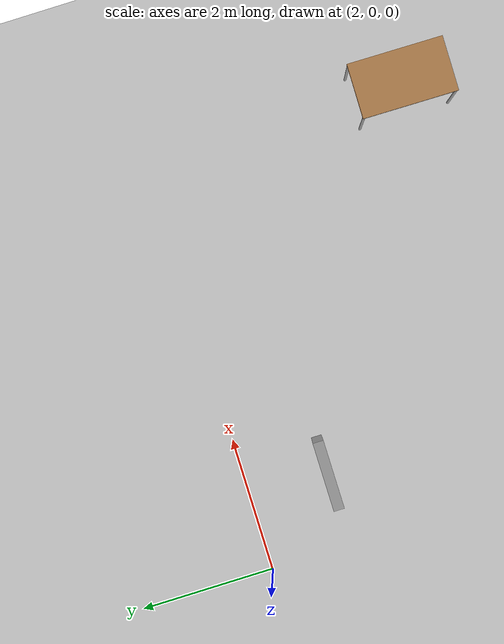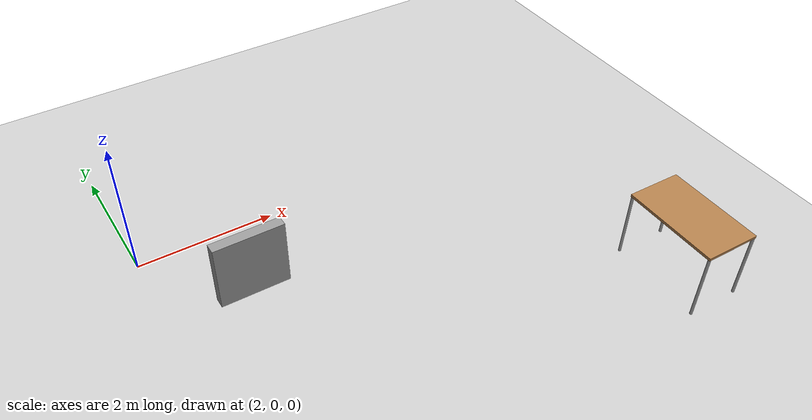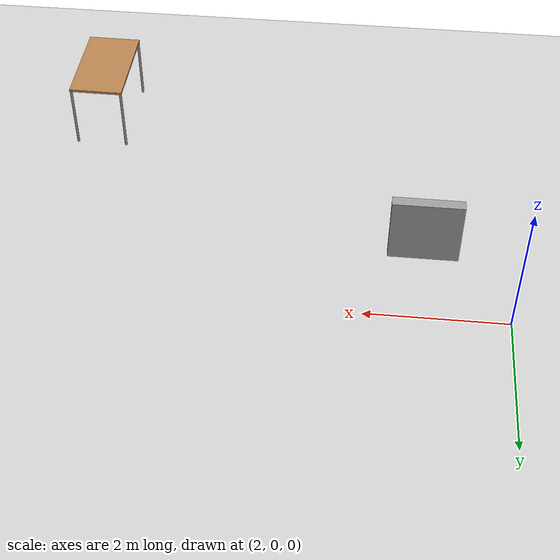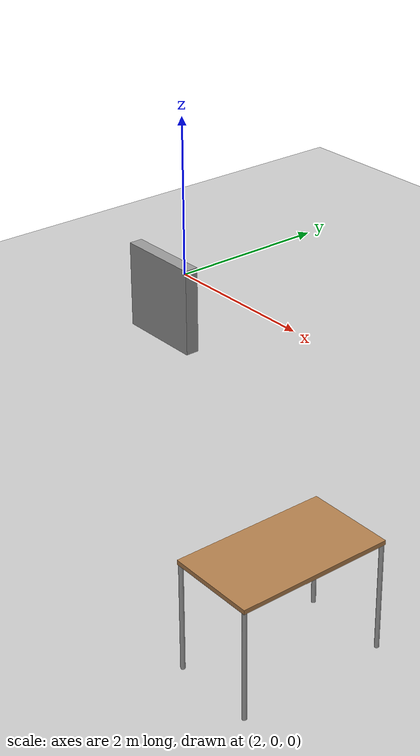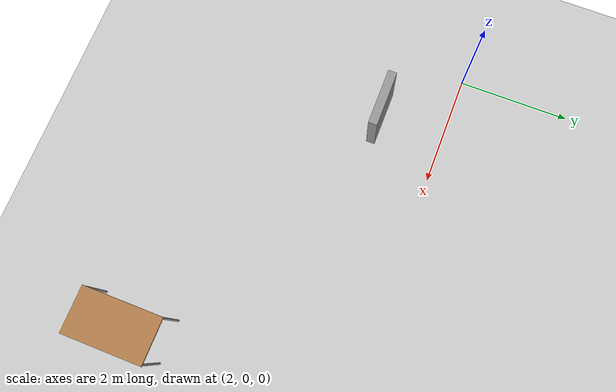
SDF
<sdf version="1.7">
 <world name="default">
  <scene><ambient>0.4 0.4 0.4 1</ambient><background>0.7 0.7 0.7 1</background><shadows>1</shadows></scene>
  <light name="sun" type="directional">
   <pose>0 0 10 0 -0 0</pose>
   <diffuse>0.8 0.8 0.8 1</diffuse>
   <specular>0.2 0.2 0.2 1</specular>
   <attenuation>
    <range>1000</range>
    <constant>0.9</constant>
    <linear>0.01</linear>
    <quadratic>0.001</quadratic>
   </attenuation>
   <direction>-0.5 0.1 -0.9</direction>
   <spot><inner_angle>0</inner_angle><outer_angle>0</outer_angle><falloff>0</falloff></spot>
  </light>
  <model name="ground_plane">
   <static>1</static>
   <link name="link">
    <collision name="collision">
     <geometry><plane><normal>0 0 1</normal><size>100 100</size></plane></geometry>
     <surface>
      <contact><collide_bitmask>65535</collide_bitmask></contact>
      <friction><ode><mu>100</mu><mu2>50</mu2></ode></friction>
     </surface>
    </collision>
    <visual name="visual">
     <cast_shadows>0</cast_shadows>
     <geometry><plane><normal>0 0 1</normal><size>100 100</size></plane></geometry>
     <material>
      <script><uri>file://media/materials/scripts/gazebo.material</uri><name>Gazebo/Grey</name></script>
     </material>
    </visual>
   </link>
  </model>
  <physics type="ode">
   <real_time_update_rate>1000</real_time_update_rate>
   <max_step_size>0.001</max_step_size>
   <real_time_factor>1</real_time_factor>
   <ode>
    <solver>
     <type>quick</type>
     <iters>150</iters>
     <precon_iters>0</precon_iters>
     <sor>1.4</sor>
     <use_dynamic_moi_rescaling>1</use_dynamic_moi_rescaling>
    </solver>
    <constraints>
     <cfm>1e-05</cfm>
     <erp>0.2</erp>
     <contact_max_correcting_vel>2000</contact_max_correcting_vel>
     <contact_surface_layer>0.01</contact_surface_layer>
    </constraints>
   </ode>
  </physics>
  <gravity>0 0 -9.8</gravity>
  <magnetic_field>6e-06 2.3e-05 -4.2e-05</magnetic_field>
  <atmosphere type="adiabatic"/>
  <spherical_coordinates>
   <surface_model>EARTH_WGS84</surface_model>
   <latitude_deg>0</latitude_deg>
   <longitude_deg>0</longitude_deg>
   <elevation>0</elevation>
   <heading_deg>0</heading_deg>
  </spherical_coordinates>
  <model name="door">
   <link name="link_0">
    <inertial>
     <mass>0.156489</mass>
     <inertia>
      <ixx>0.0133601</ixx>
      <ixy>0</ixy>
      <ixz>0</ixz>
      <iyy>0.0260815</iyy>
      <iyz>0</iyz>
      <izz>0.0133601</izz>
     </inertia>
    </inertial>
    <pose>-4e-06 1e-06 0 0 -0 0</pose>
    <visual name="visual">
     <geometry><box><size>1 0.15649 1</size></box></geometry>
     <material>
      <lighting>1</lighting>
      <script><uri>file://media/materials/scripts/gazebo.material</uri><name>Gazebo/Grey</name></script>
      <shader type="pixel"/>
     </material>
    </visual>
    <collision name="collision">
     <geometry><box><size>1 0.15649 1</size></box></geometry>
     <surface>
      <friction>
       <ode><mu>1</mu><mu2>1</mu2><fdir1>0 0 0</fdir1><slip1>0</slip1><slip2>0</slip2></ode>
       <torsional>
        <coefficient>1</coefficient>
        <patch_radius>0</patch_radius>
        <surface_radius>0</surface_radius>
        <use_patch_radius>1</use_patch_radius>
        <ode><slip>0</slip></ode>
       </torsional>
      </friction>
      <bounce><restitution_coefficient>0</restitution_coefficient><threshold>1e+06</threshold></bounce>
      <contact>
       <collide_without_contact>0</collide_without_contact>
       <collide_without_contact_bitmask>1</collide_without_contact_bitmask>
       <collide_bitmask>1</collide_bitmask>
       <ode>
        <soft_cfm>0</soft_cfm>
        <soft_erp>0.2</soft_erp>
        <kp>1e+13</kp>
        <kd>1</kd>
        <max_vel>0.01</max_vel>
        <min_depth>0</min_depth>
       </ode>
       <bullet>
        <split_impulse>1</split_impulse>
        <split_impulse_penetration_threshold>-0.01</split_impulse_penetration_threshold>
        <soft_cfm>0</soft_cfm>
        <soft_erp>0.2</soft_erp>
        <kp>1e+13</kp>
        <kd>1</kd>
       </bullet>
      </contact>
     </surface>
    </collision>
   </link>
   <static>1</static>
   <pose>3.18667 -1.19836 0.5 0 -0 0</pose>
  </model>
  <model name="table_clone">
   <static>0</static>
   <link name="link">
    <collision name="surface">
     <pose>0 0 1 0 -0 0</pose>
     <geometry><box><size>1.5 0.8 0.03</size></box></geometry>
     <surface><friction><ode><mu>0.6</mu><mu2>0.6</mu2></ode></friction></surface>
    </collision>
    <visual name="visual1">
     <pose>0 0 1 0 -0 0</pose>
     <geometry><box><size>1.4 0.8 0.04</size></box></geometry>
     <material>
      <script><uri>file://media/materials/scripts/gazebo.material</uri><name>Gazebo/Wood</name></script>
     </material>
    </visual>
    <collision name="front_left_leg">
     <pose>0.68 0.38 0.5 0 -0 0</pose>
     <geometry><cylinder><radius>0.02</radius><length>1</length></cylinder></geometry>
    </collision>
    <visual name="front_left_leg">
     <pose>0.68 0.38 0.5 0 -0 0</pose>
     <geometry><cylinder><radius>0.02</radius><length>1</length></cylinder></geometry>
     <material>
      <script><uri>file://media/materials/scripts/gazebo.material</uri><name>Gazebo/Grey</name></script>
     </material>
    </visual>
    <collision name="front_right_leg">
     <pose>0.68 -0.38 0.5 0 -0 0</pose>
     <geometry><cylinder><radius>0.02</radius><length>1</length></cylinder></geometry>
    </collision>
    <visual name="front_right_leg">
     <pose>0.68 -0.38 0.5 0 -0 0</pose>
     <geometry><cylinder><radius>0.02</radius><length>1</length></cylinder></geometry>
     <material>
      <script><uri>file://media/materials/scripts/gazebo.material</uri><name>Gazebo/Grey</name></script>
     </material>
    </visual>
    <collision name="back_right_leg">
     <pose>-0.68 -0.38 0.5 0 -0 0</pose>
     <geometry><cylinder><radius>0.02</radius><length>1</length></cylinder></geometry>
    </collision>
    <visual name="back_right_leg">
     <pose>-0.68 -0.38 0.5 0 -0 0</pose>
     <geometry><cylinder><radius>0.02</radius><length>1</length></cylinder></geometry>
     <material>
      <script><uri>file://media/materials/scripts/gazebo.material</uri><name>Gazebo/Grey</name></script>
     </material>
    </visual>
    <collision name="back_left_leg">
     <pose>-0.68 0.38 0.5 0 -0 0</pose>
     <geometry><cylinder><radius>0.02</radius><length>1</length></cylinder></geometry>
    </collision>
    <visual name="back_left_leg">
     <pose>-0.68 0.38 0.5 0 -0 0</pose>
     <geometry><cylinder><radius>0.02</radius><length>1</length></cylinder></geometry>
     <material>
      <script><uri>file://media/materials/scripts/gazebo.material</uri><name>Gazebo/Grey</name></script>
     </material>
    </visual>
    <inertial>
     <inertia><ixx>1</ixx><ixy>0</ixy><ixz>0</ixz><iyy>1</iyy><iyz>0</iyz><izz>1</izz></inertia>
     <mass>1</mass>
    </inertial>
   </link>
   <pose>8.21307 -3.85602 -1e-06 0 1e-06 -1.58076</pose>
  </model>
  <plugin name="gazebo_ros_state" filename="libgazebo_ros_state.so"><update_rate>1.0</update_rate></plugin>
 </world>
</sdf>
